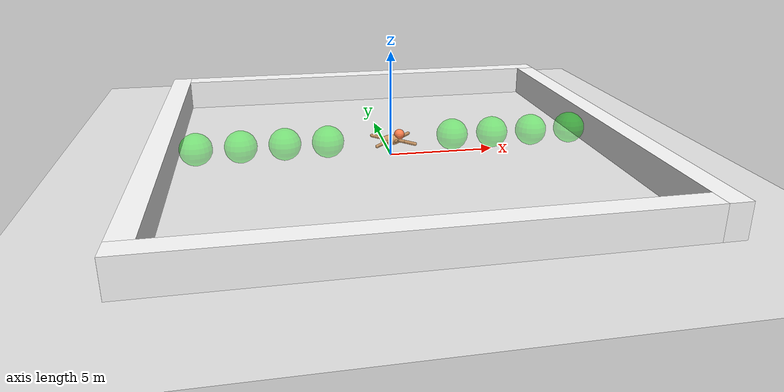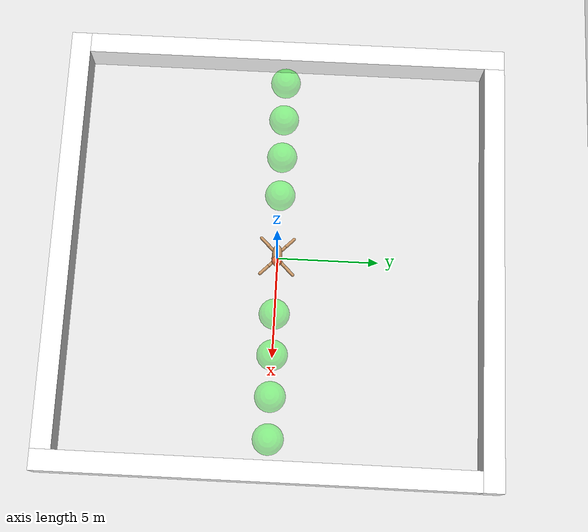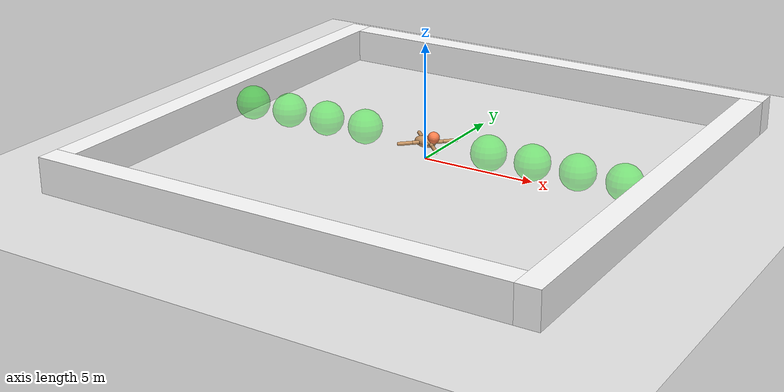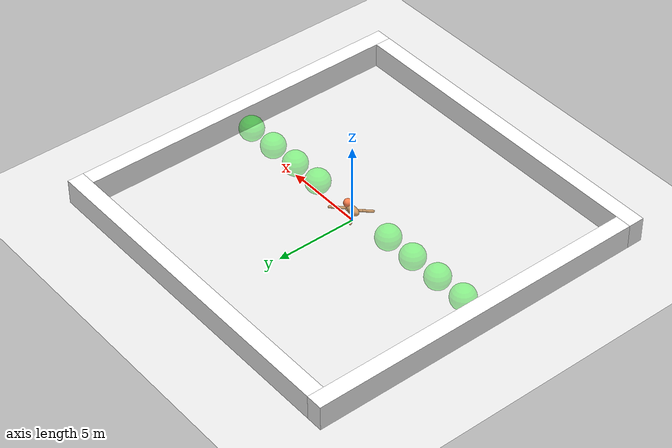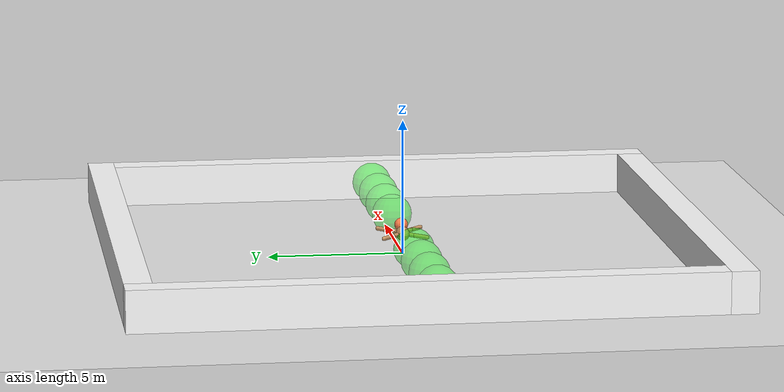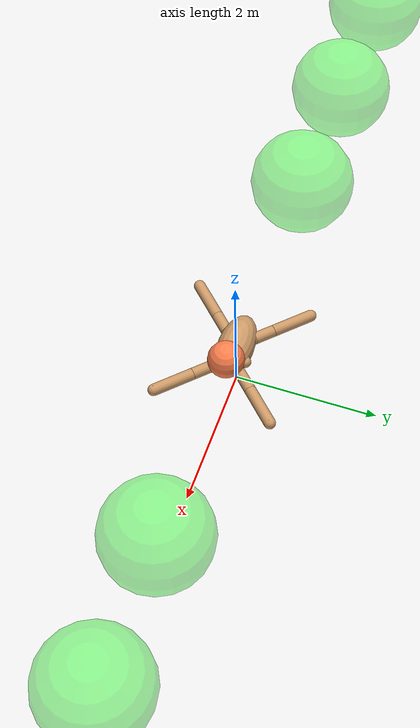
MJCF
<mujoco model="ant">
  <compiler angle="degree" coordinate="local" inertiafromgeom="true" settotalmass="40"/>
  <option integrator="RK4" timestep="0.005"/>
  <custom>
    <numeric data="0.0 0.0 0.55 1.0 0.0 0.0 0.0 0.0 1.0 0.0 -1.0 0.0 -1.0 0.0 1.0" name="init_qpos"/>
  </custom>
  <default>
    <joint armature="1" damping="1" limited="true"/>
    <geom conaffinity="1" contype="1" condim="3" density="5.0" friction="1 0.5 0.5" margin="0.01" rgba="0.8 0.6 0.4 1" material="geom"/>
  </default>
    <asset>
        <texture type="skybox" builtin="gradient" rgb1=".1 .12 .15" rgb2="0 0 0" width="100" height="100"/>
        <texture builtin="checker" height="100" name="texplane" rgb1=".35 .65 .65" rgb2=".0 .4 0.6" type="2d" width="100"/>
        <material name="MatPlane" reflectance="0.5" shininess="1" specular="1" texrepeat="25 25" texture="texplane"/>
        <texture builtin="flat" height="1278" mark="cross" markrgb="1 1 1" name="texgeom" random="0.01" rgb1="0.8 0.6 0.4" rgb2="0.8 0.6 0.4" type="cube" width="127"/>
        <material name="geom" texture="texgeom" texuniform="true"/>
    </asset>
  <worldbody>
    <light directional="true" cutoff="100" exponent="1" diffuse="1 1 1" specular=".1 .1 .1" pos="0 0 1.3" dir="-0 0 -1.3" />
    <geom name='floor' material="MatPlane" pos='0 0 0' size='40 40 40' type='plane' rgba='0.9 0.9 0.9 1' condim='3' group="1"/>

    <geom name="wall-0" pos=" -0.5 -10.5  0.5" rgba="1. 1. 1. 1" size="10.5   0.5  1.0" type="box" material="" group="1" />
    <geom name="wall-1" pos="-10.5   0.5  0.5" rgba="1. 1. 1. 1" size=" 0.5  10.5  1.0" type="box" material="" group="1" />
    <geom name="wall-2" pos="  0.5  10.5  0.5" rgba="1. 1. 1. 1" size="10.5   0.5  1.0" type="box" material="" group="1" />
    <geom name="wall-3" pos=" 10.5  -0.5  0.5" rgba="1. 1. 1. 1" size=" 0.5  10.5  1.0" type="box" material="" group="1" />

    <body name="torso" pos="0 0 0.75">
      <geom name="torso_geom" pos="0 0 0" size="0.50 0.25 0.25" type="ellipsoid"/>
      <body name="head" pos="0.4 0 0.25">
        <geom name="head_geom" density="0.01" rgba="1.0 0.5 0.3 1" pos="0.0 0.0 0.0" size="0.25" type="sphere"/>
        <site name="head_site" pos="0.0 0.0 0.0" size="0.005" type="sphere"/>
      </body>
      <joint armature="0" damping="0" limited="false" margin="0.01" name="root" pos="0 0 0" type="free"/>
      <body name="front_left_leg" pos="0 0 0">
        <geom fromto="0.0 0.0 0.0 0.2 0.2 0.0" name="aux_1_geom" size="0.08" type="capsule"/>
        <body name="aux_1" pos="0.4 0.2 0">
          <joint axis="0 0 1" name="hip_1" pos="0.0 0.0 0.0" range="-30 30" type="hinge"/>
          <geom fromto="0.0 0.0 0.0 0.2 0.2 0.0" name="front_left_leg_geom" size="0.08" type="capsule"/>
          <site fromto="0.0 0.0 0.0 0.2 0.2 0.0" name="front_left_leg_site" size="0.005" type="capsule"/>
          <body pos="0.2 0.2 0">
            <joint axis="-1 1 0" name="ankle_1" pos="0.0 0.0 0.0" range="30 70" type="hinge"/>
            <geom fromto="0.0 0.0 0.0 0.4 0.4 0.0" name="front_left_ankle_geom" size="0.08" type="capsule"/>
            <site fromto="0.0 0.0 0.0 0.4 0.4 0.0" name="front_left_ankle_site" size="0.005" type="capsule"/>
          </body>
        </body>
      </body>
      <body name="front_right_leg" pos="0 0 0">
        <geom fromto="0.0 0.0 0.0 -0.2 0.2 0.0" name="aux_2_geom" size="0.08" type="capsule"/>
        <body name="aux_2" pos="-0.2 0.2 0">
          <joint axis="0 0 1" name="hip_2" pos="0.0 0.0 0.0" range="-30 30" type="hinge"/>
          <geom fromto="0.0 0.0 0.0 -0.2 0.2 0.0" name="front_right_leg_geom" size="0.08" type="capsule"/>
          <body pos="-0.2 0.2 0">
            <joint axis="1 1 0" name="ankle_2" pos="0.0 0.0 0.0" range="-70 -30" type="hinge"/>
            <geom fromto="0.0 0.0 0.0 -0.4 0.4 0.0" name="front_right_ankle_geom" size="0.08" type="capsule"/>
          </body>
        </body>
      </body>
      <body name="back_leg" pos="0 0 0">
        <geom fromto="0.0 0.0 0.0 -0.2 -0.2 0.0" name="aux_3_geom" size="0.08" type="capsule"/>
        <body name="aux_3" pos="-0.2 -0.2 0">
          <joint axis="0 0 1" name="hip_3" pos="0.0 0.0 0.0" range="-30 30" type="hinge"/>
          <geom fromto="0.0 0.0 0.0 -0.2 -0.2 0.0" name="left_back_leg_geom" size="0.08" type="capsule"/>
          <body pos="-0.2 -0.2 0">
            <joint axis="-1 1 0" name="ankle_3" pos="0.0 0.0 0.0" range="-70 -30" type="hinge"/>
            <geom fromto="0.0 0.0 0.0 -0.4 -0.4 0.0" name="left_back_ankle_geom" size="0.08" type="capsule"/>
          </body>
        </body>
      </body>
      <body name="right_back_leg" pos="0 0 0">
        <geom fromto="0.0 0.0 0.0 0.2 -0.2 0.0" name="aux_4_geom" size="0.08" type="capsule"/>
        <body name="aux_4" pos="0.4 -0.2 0">
          <joint axis="0 0 1" name="hip_4" pos="0.0 0.0 0.0" range="-30 30" type="hinge"/>
          <geom fromto="0.0 0.0 0.0 0.2 -0.2 0.0" name="right_back_leg_geom" size="0.08" type="capsule"/>
          <body pos="0.2 -0.2 0">
            <joint axis="1 1 0" name="ankle_4" pos="0.0 0.0 0.0" range="30 70" type="hinge"/>
            <geom fromto="0.0 0.0 0.0 0.4 -0.4 0.0" name="right_back_ankle_geom" size="0.08" type="capsule"/>
          </body>
        </body>
      </body>
    </body>
    <geom name="target_0" pos=" 9  0 0.85" rgba="0 1 0 0.4" size="0.75" type="sphere" group="1" contype="0" conaffinity="0" />
    <geom name="target_1" pos=" 7  0 0.85" rgba="0 1 0 0.4" size="0.75" type="sphere" group="1" contype="0" conaffinity="0" />
    <geom name="target_2" pos=" 5  0 0.85" rgba="0 1 0 0.4" size="0.75" type="sphere" group="1" contype="0" conaffinity="0" />
    <geom name="target_3" pos=" 3  0 0.85" rgba="0 1 0 0.4" size="0.75" type="sphere" group="1" contype="0" conaffinity="0" />
    <geom name="target_4" pos="-3  0 0.85" rgba="0 1 0 0.4" size="0.75" type="sphere" group="1" contype="0" conaffinity="0" />
    <geom name="target_5" pos="-5  0 0.85" rgba="0 1 0 0.4" size="0.75" type="sphere" group="1" contype="0" conaffinity="0" />
    <geom name="target_6" pos="-7  0 0.85" rgba="0 1 0 0.4" size="0.75" type="sphere" group="1" contype="0" conaffinity="0" />
    <geom name="target_7" pos="-9  0 0.85" rgba="0 1 0 0.4" size="0.75" type="sphere" group="1" contype="0" conaffinity="0" />
    <geom name="target_8" pos="-9  0 0.85" rgba="0 1 0 0.4" size="0.75" type="sphere" group="1" contype="0" conaffinity="0" />
    <geom name="target_9" pos="-9  0 0.85" rgba="0 1 0 0.4" size="0.75" type="sphere" group="1" contype="0" conaffinity="0" />
    <geom name="target_10" pos="-9  0 0.85" rgba="0 1 0 0.4" size="0.75" type="sphere" group="1" contype="0" conaffinity="0" />
    <geom name="target_11" pos="-9  0 0.85" rgba="0 1 0 0.4" size="0.75" type="sphere" group="1" contype="0" conaffinity="0" />
    <geom name="target_12" pos="-9  0 0.85" rgba="0 1 0 0.4" size="0.75" type="sphere" group="1" contype="0" conaffinity="0" />
    <geom name="target_13" pos="-9  0 0.85" rgba="0 1 0 0.4" size="0.75" type="sphere" group="1" contype="0" conaffinity="0" />
    <geom name="target_14" pos="-9  0 0.85" rgba="0 1 0 0.4" size="0.75" type="sphere" group="1" contype="0" conaffinity="0" />
    <geom name="target_15" pos="-9  0 0.85" rgba="0 1 0 0.4" size="0.75" type="sphere" group="1" contype="0" conaffinity="0" />

  </worldbody>
  <actuator>
    <motor ctrllimited="true" ctrlrange="-1.0 1.0" joint="hip_4" gear="150"/>
    <motor ctrllimited="true" ctrlrange="-1.0 1.0" joint="ankle_4" gear="150"/>
    <motor ctrllimited="true" ctrlrange="-1.0 1.0" joint="hip_1" gear="150"/>
    <motor ctrllimited="true" ctrlrange="-1.0 1.0" joint="ankle_1" gear="150"/>
    <motor ctrllimited="true" ctrlrange="-1.0 1.0" joint="hip_2" gear="150"/>
    <motor ctrllimited="true" ctrlrange="-1.0 1.0" joint="ankle_2" gear="150"/>
    <motor ctrllimited="true" ctrlrange="-1.0 1.0" joint="hip_3" gear="150"/>
    <motor ctrllimited="true" ctrlrange="-1.0 1.0" joint="ankle_3" gear="150"/>
  </actuator>
  <sensor>
    <force name='force_head' site='head_site' />
    <force name='force_front_left_leg' site='front_left_leg_site' />
  </sensor>
</mujoco>
